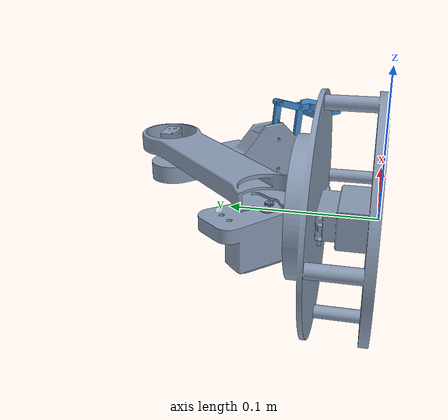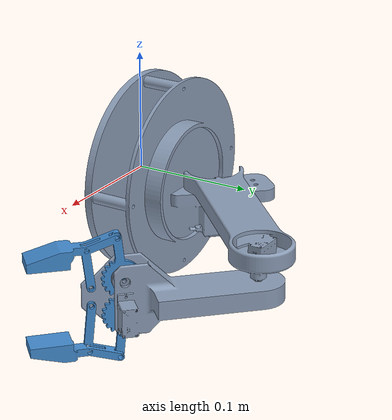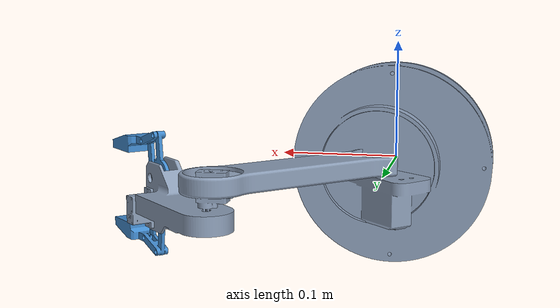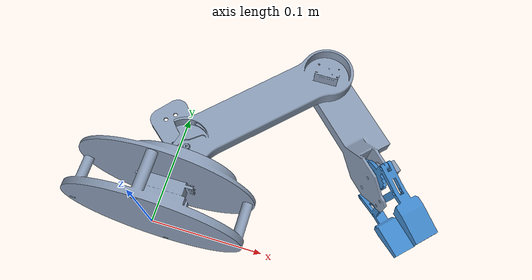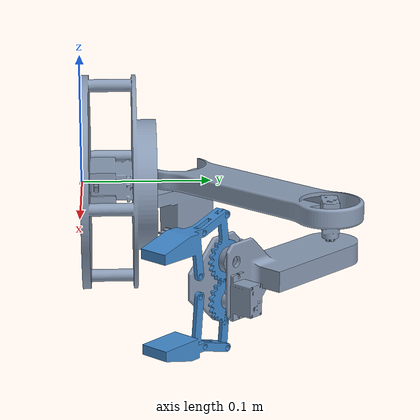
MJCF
<?xml version='1.0' encoding='utf-8'?>
<mujoco model="four-dof-desktop-arm-v1">
  <!--Kinematic validation only: zero gravity, no actuators, and no invented joint limits or dynamics.-->
  <compiler angle="radian" meshdir="meshes" autolimits="true" balanceinertia="true" />
  <option gravity="0 0 0" />
  <asset>
    <mesh name="fixed_base" file="fixed_base.stl" scale="1 1 1" inertia="convex" />
    <mesh name="turntable" file="turntable.stl" scale="1 1 1" inertia="convex" />
    <mesh name="upper_arm" file="upper_arm.stl" scale="1 1 1" inertia="convex" />
    <mesh name="forearm" file="forearm.stl" scale="1 1 1" inertia="convex" />
    <mesh name="gripper_fixed" file="gripper_fixed.stl" scale="1 1 1" inertia="convex" />
    <mesh name="gripper_mirror" file="gripper_mirror.stl" scale="1 1 1" inertia="convex" />
    <mesh name="gripper_primary" file="gripper_primary.stl" scale="1 1 1" inertia="convex" />
  </asset>
  <worldbody>
    <body name="fixed_base">
      <geom name="fixed_base_mesh" type="mesh" mesh="fixed_base" rgba="0.55 0.62 0.72 1" />
      <body name="turntable" pos="0.00965 0.047349999914 -3.30779244597e-16">
        <joint name="J1_BASE_YAW" type="hinge" axis="0 1 0" limited="false" />
        <geom name="turntable_mesh" type="mesh" mesh="turntable" rgba="0.55 0.62 0.72 1" />
        <body name="upper_arm" pos="-0.00353585011008 0.0266398001168 -0.0054">
          <joint name="J2_SHOULDER" type="hinge" axis="0 0 1" limited="false" />
          <geom name="upper_arm_mesh" type="mesh" mesh="upper_arm" rgba="0.55 0.62 0.72 1" />
          <body name="forearm" pos="0.111466017178 0.106466017178 -0.00535">
            <joint name="J3_ELBOW" type="hinge" axis="0 0 1" limited="false" />
            <geom name="forearm_mesh" type="mesh" mesh="forearm" rgba="0.55 0.62 0.72 1" />
            <geom name="gripper_fixed_mesh" type="mesh" mesh="gripper_fixed" rgba="0.48 0.54 0.64 1" />
            <body name="gripper_primary" pos="0.0632579918849 -0.0782792371111 -0.02455">
              <joint name="J4_END_EFFECTOR" type="hinge" axis="0.708318205351 0.70589327803 0" limited="false" />
              <geom name="gripper_primary_mesh" type="mesh" mesh="gripper_primary" rgba="0.26 0.55 0.82 1" />
            </body>
            <body name="gripper_mirror" pos="0.0667289935838 -0.0746789389004 0.005">
              <joint name="J4_END_EFFECTOR_MIRROR" type="hinge" axis="0.708318205351 0.70589327803 0" limited="false" />
              <geom name="gripper_mirror_mesh" type="mesh" mesh="gripper_mirror" rgba="0.26 0.55 0.82 1" />
            </body>
          </body>
        </body>
      </body>
    </body>
  </worldbody>
  <equality>
    <joint name="J4_GEAR_COUPLING" joint1="J4_END_EFFECTOR" joint2="J4_END_EFFECTOR_MIRROR" polycoef="0 -1 0 0 0" />
  </equality>
</mujoco>
